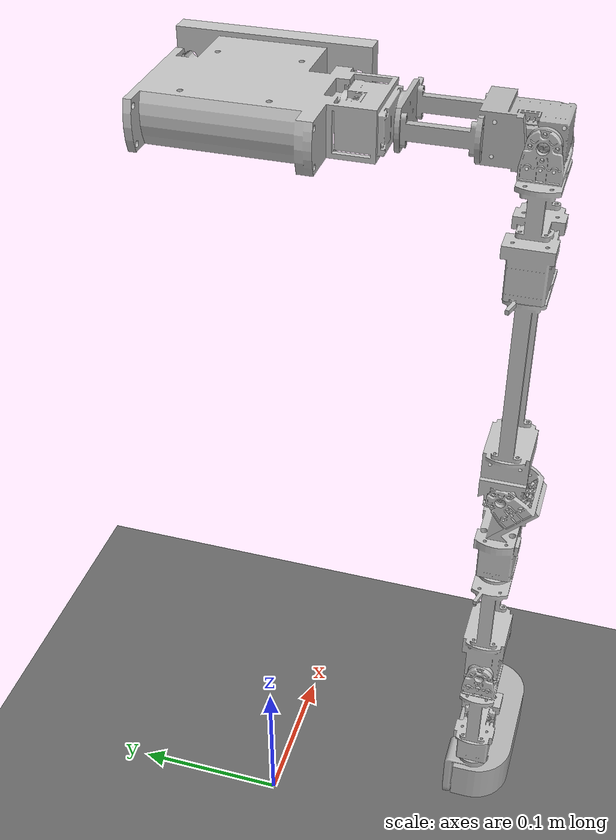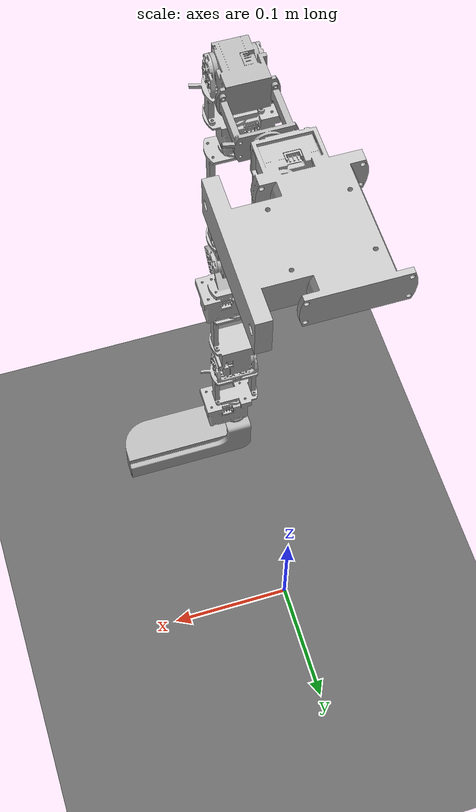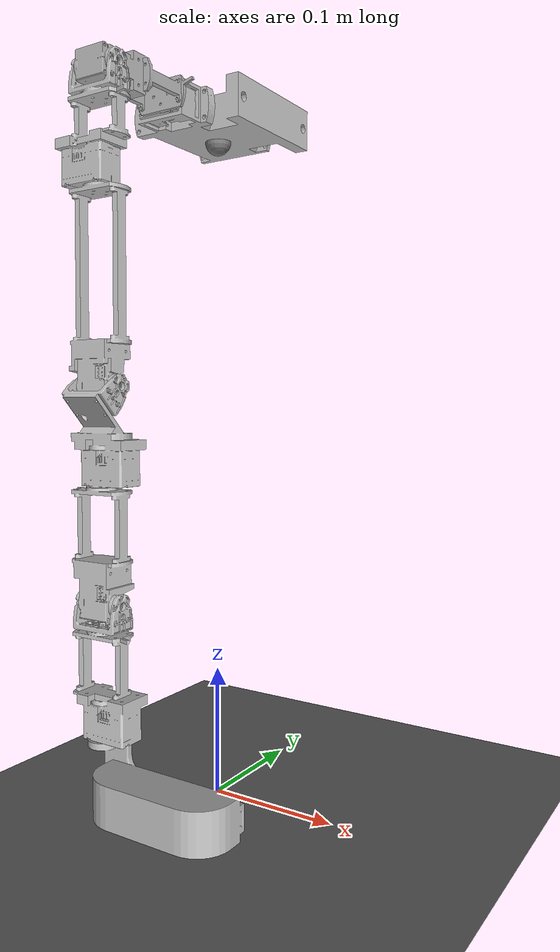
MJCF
<mujoco model="UH-v3.0 final.SLDASM v9">
  <option iterations="50" timestep="0.001" solver="PGS" gravity="0 0 -9.81" />

  <compiler angle="radian" meshdir="meshes" eulerseq="zyx" autolimits="true" />

  <default>
    <joint limited="true" damping="0.01" armature="0.01" frictionloss="0.01" />
    <geom condim="4" contype="1" conaffinity="15" friction="0.9 0.2 0.2" solref="0.001 2" />
    <motor ctrllimited="true" />
    <equality solref="0.001 2" />
    <default class="visualgeom">
      <geom material="visualgeom" condim="1" contype="0" conaffinity="0" />
    </default>
  </default>

  <asset>
    <mesh name="base_link" content_type="model/stl" file="base_link.STL" />
    <mesh name="Link1" content_type="model/stl" file="Link1.STL" />
    <mesh name="Link2" content_type="model/stl" file="Link2.STL" />
    <mesh name="Link3" content_type="model/stl" file="Link3.STL" />
    <mesh name="Link4" content_type="model/stl" file="Link4.STL" />
    <mesh name="Link5" content_type="model/stl" file="Link5.STL" />
    <mesh name="Link6" content_type="model/stl" file="Link6.STL" />
    <mesh name="Link7" content_type="model/stl" file="Link7.STL" />
    <texture name="texplane" type="2d" builtin="checker" rgb1=".0 .0 .0" rgb2=".8 .8 .8" width="100" height="100" />
    <material name="matplane" reflectance="0." texture="texplane" texrepeat="1 1" texuniform="true" />
    <material name="visualgeom" rgba="0.5 0.9 0.2 1" />
  </asset>

  <worldbody>
    <light directional="true" diffuse="0.4 0.4 0.4" specular="0.1 0.1 0.1" pos="0 0 5.0" dir="0 0 -1" castshadow="false" />
    <light directional="true" diffuse="0.6 0.6 0.6" specular="0.2 0.2 0.2" pos="0 0 4" dir="0 0 -1" />
    <geom name="ground" type="plane" pos="0 0 0" size="100 100 0.001" quat="1 0 0 0" material="matplane" condim="3" conaffinity="15" />
    <camera name="fixed" pos="0 -3.0 1.0119785870285392" xyaxes="1 0 0 0 0 1" />
    <camera name="track" mode="trackcom" pos="0 -3.0 1.0119785870285392" xyaxes="1 0 0 0 0 1" />
    <body name="root" pos="0 0 0.5119785870285393" quat="1 0 0 0">
      <site name="imu" size="0.01" pos="0 0 0" />
      <geom type="mesh" rgba="0.752941 0.752941 0.752941 1" mesh="base_link" contype="1" conaffinity="0" density="0" group="1" class="visualgeom" />
      <geom type="mesh" rgba="0.752941 0.752941 0.752941 1" mesh="base_link" />
      <body name="Link1" pos="0.0038974 -0.073 0.0125" quat="-2.59734e-06 2.59735e-06 -0.707108 0.707105">
        <inertial pos="8.09453e-05 -1.09903e-05 0.0500472" quat="0.697636 0.0307961 0.0313514 0.715104" mass="0.0247648" diaginertia="2.83046e-06 2.64493e-06 1.90596e-06" />
        <joint name="joint1" pos="0 0 0" axis="0 0 1" range="-3.14 3.14" actuatorfrcrange="-0.5 0.5" />
        <geom type="mesh" rgba="0.698039 0.698039 0.698039 1" mesh="Link1" contype="1" conaffinity="0" density="0" group="1" class="visualgeom" />
        <geom type="mesh" rgba="0.698039 0.698039 0.698039 1" mesh="Link1" />
        <body name="Link2" pos="-0.0173 0 0.068" quat="0.499998 -0.5 -0.500002 0.5">
          <inertial pos="0.0501926 -5.13519e-06 -0.022536" quat="0.999998 0.00153013 -0.00103932 -1.55989e-05" mass="0.0250913" diaginertia="3.54423e-06 3.14615e-06 1.18565e-06" />
          <joint name="joint2" pos="0 0 0" axis="0 0 -1" range="-3.14 3.14" actuatorfrcrange="-0.5 0.5" />
          <geom type="mesh" rgba="0.752941 0.752941 0.752941 1" mesh="Link2" contype="1" conaffinity="0" density="0" group="1" class="visualgeom" />
          <geom type="mesh" rgba="0.752941 0.752941 0.752941 1" mesh="Link2" />
          <body name="Link3" pos="0.075 0 -0.0173" quat="0.707105 0 0.707108 0">
            <inertial pos="0.000465713 7.06112e-05 0.0980089" quat="0.658313 0.00759144 0.0107599 0.75263" mass="0.0273651" diaginertia="6.13757e-06 5.95186e-06 1.9381e-06" />
            <joint name="joint3" pos="0 0 0" axis="0 0 1" range="-3.14 3.14" actuatorfrcrange="-0.5 0.5" />
            <geom type="mesh" rgba="0.752941 0.752941 0.752941 1" mesh="Link3" contype="1" conaffinity="0" density="0" group="1" class="visualgeom" />
            <geom type="mesh" rgba="0.752941 0.752941 0.752941 1" mesh="Link3" />
            <body name="Link4" pos="0.0173 0 0.128" quat="0.707105 0 0.707108 0">
              <inertial pos="-0.0419897 -0.00127753 -0.0224358" quat="0.980632 0.000223543 0.00136251 0.195853" mass="0.0258918" diaginertia="3.89652e-06 3.39765e-06 1.53988e-06" />
              <joint name="joint4" pos="0 0 0" axis="0 0 1" range="-3.14 3.14" actuatorfrcrange="-0.5 0.5" />
              <geom type="mesh" rgba="0.752941 0.752941 0.752941 1" mesh="Link4" contype="1" conaffinity="0" density="0" group="1" class="visualgeom" />
              <geom type="mesh" rgba="0.752941 0.752941 0.752941 1" mesh="Link4" />
              <body name="Link5" pos="-0.065027 -0.0044352 -0.0173" quat="0.707105 0 -0.707108 0">
                <inertial pos="-7.96593e-05 0.00444605 0.0576003" quat="0.69781 -0.0247379 -0.0251737 0.715413" mass="0.0251646" diaginertia="3.01336e-06 2.82823e-06 1.90968e-06" />
                <joint name="joint5" pos="0 0 0" axis="0 0 1" range="-3.14 3.14" actuatorfrcrange="-0.5 0.5" />
                <geom type="mesh" rgba="0.752941 0.752941 0.752941 1" mesh="Link5" contype="1" conaffinity="0" density="0" group="1" class="visualgeom" />
                <geom type="mesh" rgba="0.752941 0.752941 0.752941 1" mesh="Link5" />
                <body name="Link6" pos="0.0173 0.0044352 0.077151" quat="0.707105 0 0.707108 0">
                  <inertial pos="-0.0615584 -1.05939e-05 -0.0224789" quat="0.999998 -0.00153216 0.00123529 -0.000285407" mass="0.0256914" diaginertia="3.54801e-06 3.32689e-06 1.36855e-06" />
                  <joint name="joint6" pos="0 0 0" axis="0 0 1" range="-3.14 3.14" actuatorfrcrange="-0.5 0.5" />
                  <geom type="mesh" rgba="0.752941 0.752941 0.752941 1" mesh="Link6" contype="1" conaffinity="0" density="0" group="1" class="visualgeom" />
                  <geom type="mesh" rgba="0.752941 0.752941 0.752941 1" mesh="Link6" />
                  <body name="Link7" pos="-0.09 0 -0.0173" quat="0.707105 0 -0.707108 0">
                    <inertial pos="-0.0456919 -0.00159181 0.0322193" quat="-0.00864211 0.717912 -0.00984524 0.69601" mass="0.0603672" diaginertia="5.43713e-05 5.32329e-05 9.6083e-06" />
                    <joint name="joint7" pos="0 0 0" axis="0 0 1" range="-3.14 3.14" actuatorfrcrange="-0.5 0.5" />
                    <geom type="mesh" rgba="0.698039 0.698039 0.698039 1" mesh="Link7" contype="1" conaffinity="0" density="0" group="1" class="visualgeom" />
                    <geom type="mesh" rgba="0.698039 0.698039 0.698039 1" mesh="Link7" />
                  </body>
                </body>
              </body>
            </body>
          </body>
        </body>
      </body>
    </body>
  </worldbody>

  <actuator>
  </actuator>

  <sensor>
  </sensor>
</mujoco>
